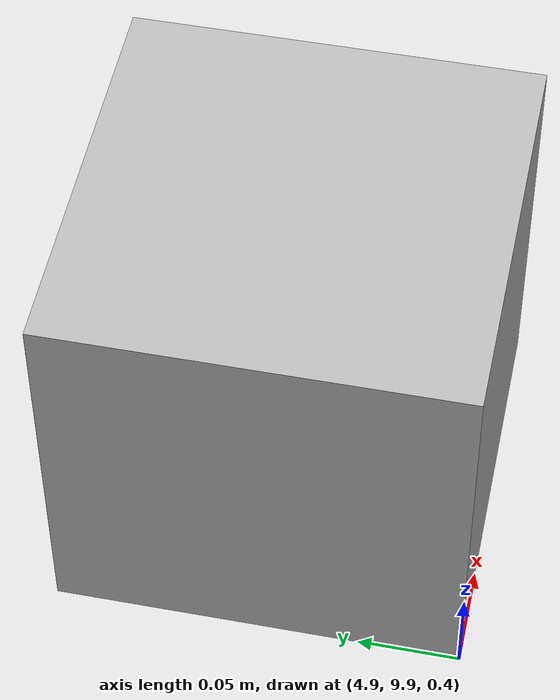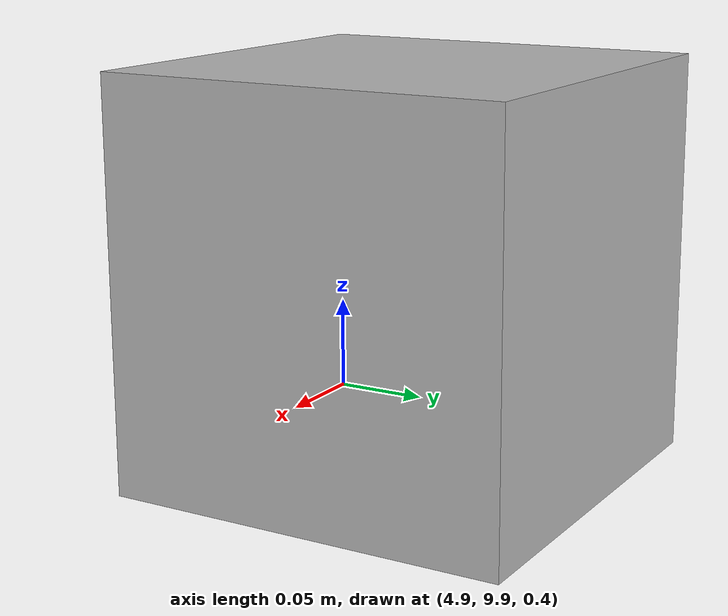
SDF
<?xml version='1.0'?>
<sdf version="1.4">
  <model name="uwb_anchor4">
      <pose>5 10 0.5 0 0 0</pose>
      <static>1</static>
      <link name="link">
        <visual name="visual">
          <geometry>
            <box>
              <size>0.2 0.2 0.2</size>
            </box>
          </geometry>
        </visual>
      </link>
    </model>
</sdf>
